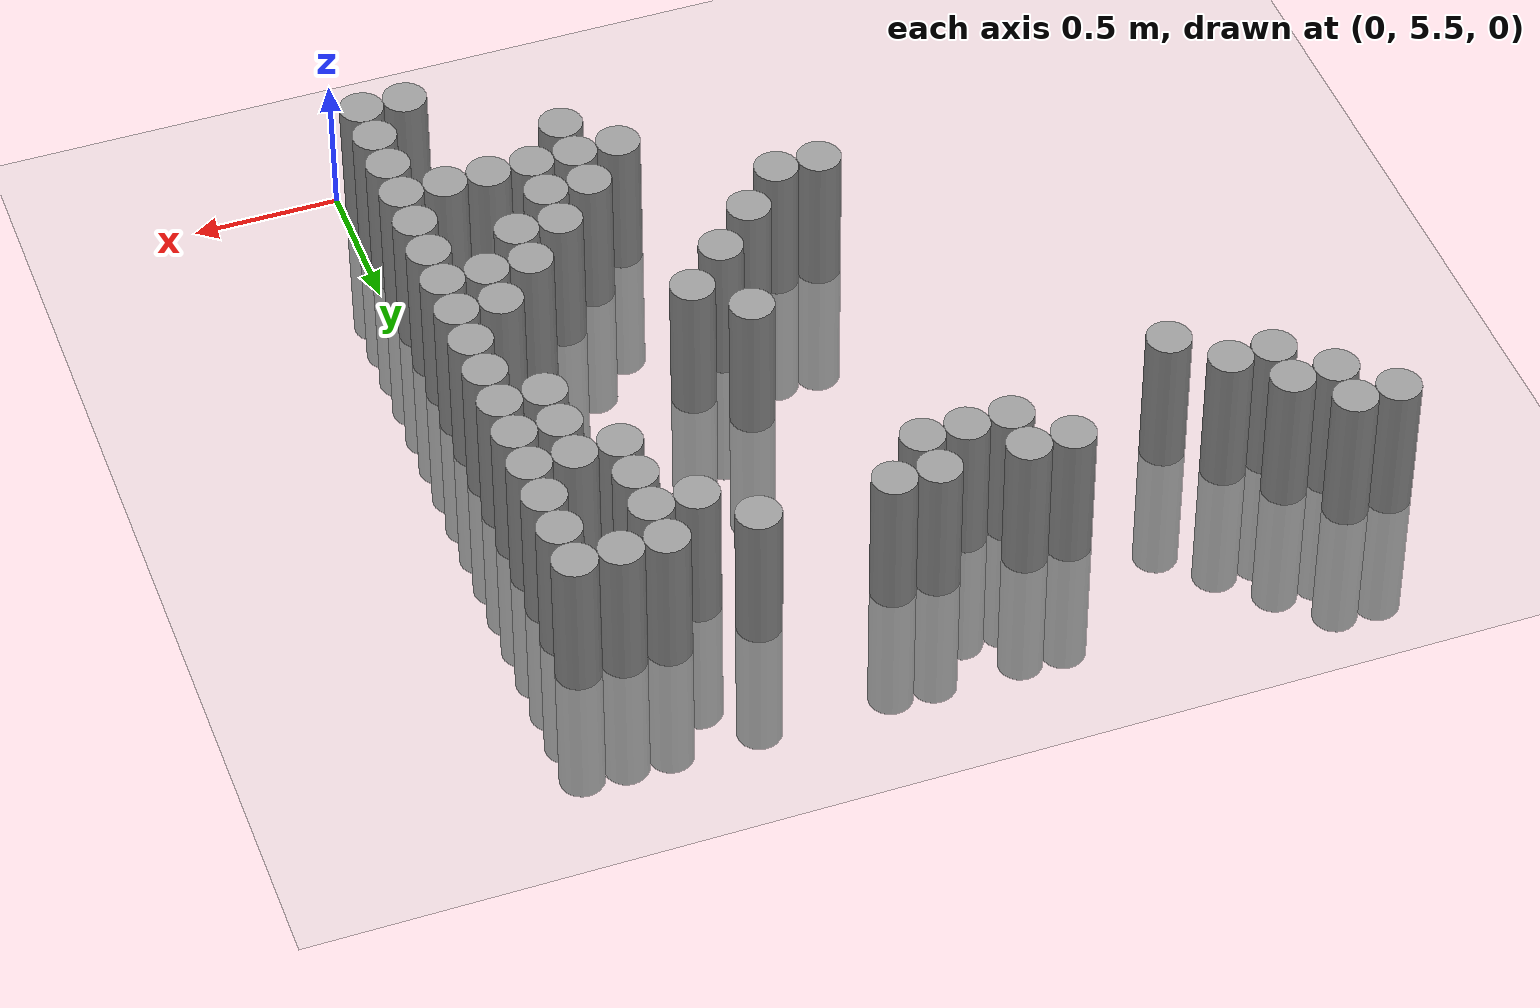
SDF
<sdf version="1.6">
 <world name="default">
  <model name="ground_plane">
   <static>1</static>
   <static>1</static>
   <link name="link">
    <collision name="collision">
     <geometry><plane><normal>0 0 1</normal><size>100 100</size></plane></geometry>
     <surface><friction><ode><mu>100</mu><mu2>50</mu2></ode></friction></surface>
    </collision>
    <visual name="visual">
     <cast_shadows>0</cast_shadows>
     <geometry><plane><normal>0 0 1</normal><size>100 100</size></plane></geometry>
     <material>
      <script><uri>file://media/materials/scripts/gazebo.material</uri><name>Gazebo/Grey</name></script>
     </material>
    </visual>
   </link>
  </model>
  <model name="unit_cylinder_168">
   <static>1</static>
   <pose>-2.775000 8.025000 0.000000 0.000000 0.000000 0.000000</pose>
   <link name="link">
    <inertial>
     <mass>1</mass>
     <inertia><ixx>0.145833</ixx><ixy>0</ixy><ixz>0</ixz><iyy>0.145833</iyy><iyz>0</iyz><izz>0.125</izz></inertia>
    </inertial>
    <collision name="collision">
     <geometry><cylinder><radius>0.075000</radius><length>1</length></cylinder></geometry>
    </collision>
    <visual name="visual">
     <geometry><cylinder><radius>0.075000</radius><length>1</length></cylinder></geometry>
     <material>
      <script><name>Gazebo/Grey</name><uri>file://media/materials/scripts/gazebo.material</uri></script>
     </material>
    </visual>
   </link>
  </model>
  <model name="unit_cylinder_173">
   <static>1</static>
   <pose>-2.625000 7.875000 0.000000 0.000000 0.000000 0.000000</pose>
   <link name="link">
    <inertial>
     <mass>1</mass>
     <inertia><ixx>0.145833</ixx><ixy>0</ixy><ixz>0</ixz><iyy>0.145833</iyy><iyz>0</iyz><izz>0.125</izz></inertia>
    </inertial>
    <collision name="collision">
     <geometry><cylinder><radius>0.075000</radius><length>1</length></cylinder></geometry>
    </collision>
    <visual name="visual">
     <geometry><cylinder><radius>0.075000</radius><length>1</length></cylinder></geometry>
     <material>
      <script><name>Gazebo/Grey</name><uri>file://media/materials/scripts/gazebo.material</uri></script>
     </material>
    </visual>
   </link>
  </model>
  <model name="unit_cylinder_174">
   <static>1</static>
   <pose>-2.625000 8.025000 0.000000 0.000000 0.000000 0.000000</pose>
   <link name="link">
    <inertial>
     <mass>1</mass>
     <inertia><ixx>0.145833</ixx><ixy>0</ixy><ixz>0</ixz><iyy>0.145833</iyy><iyz>0</iyz><izz>0.125</izz></inertia>
    </inertial>
    <collision name="collision">
     <geometry><cylinder><radius>0.075000</radius><length>1</length></cylinder></geometry>
    </collision>
    <visual name="visual">
     <geometry><cylinder><radius>0.075000</radius><length>1</length></cylinder></geometry>
     <material>
      <script><name>Gazebo/Grey</name><uri>file://media/materials/scripts/gazebo.material</uri></script>
     </material>
    </visual>
   </link>
  </model>
  <model name="unit_cylinder_180">
   <static>1</static>
   <pose>-2.475000 7.725000 0.000000 0.000000 0.000000 0.000000</pose>
   <link name="link">
    <inertial>
     <mass>1</mass>
     <inertia><ixx>0.145833</ixx><ixy>0</ixy><ixz>0</ixz><iyy>0.145833</iyy><iyz>0</iyz><izz>0.125</izz></inertia>
    </inertial>
    <collision name="collision">
     <geometry><cylinder><radius>0.075000</radius><length>1</length></cylinder></geometry>
    </collision>
    <visual name="visual">
     <geometry><cylinder><radius>0.075000</radius><length>1</length></cylinder></geometry>
     <material>
      <script><name>Gazebo/Grey</name><uri>file://media/materials/scripts/gazebo.material</uri></script>
     </material>
    </visual>
   </link>
  </model>
  <model name="unit_cylinder_181">
   <static>1</static>
   <pose>-2.475000 7.875000 0.000000 0.000000 0.000000 0.000000</pose>
   <link name="link">
    <inertial>
     <mass>1</mass>
     <inertia><ixx>0.145833</ixx><ixy>0</ixy><ixz>0</ixz><iyy>0.145833</iyy><iyz>0</iyz><izz>0.125</izz></inertia>
    </inertial>
    <collision name="collision">
     <geometry><cylinder><radius>0.075000</radius><length>1</length></cylinder></geometry>
    </collision>
    <visual name="visual">
     <geometry><cylinder><radius>0.075000</radius><length>1</length></cylinder></geometry>
     <material>
      <script><name>Gazebo/Grey</name><uri>file://media/materials/scripts/gazebo.material</uri></script>
     </material>
    </visual>
   </link>
  </model>
  <model name="unit_cylinder_187">
   <static>1</static>
   <pose>-2.325000 7.725000 0.000000 0.000000 0.000000 0.000000</pose>
   <link name="link">
    <inertial>
     <mass>1</mass>
     <inertia><ixx>0.145833</ixx><ixy>0</ixy><ixz>0</ixz><iyy>0.145833</iyy><iyz>0</iyz><izz>0.125</izz></inertia>
    </inertial>
    <collision name="collision">
     <geometry><cylinder><radius>0.075000</radius><length>1</length></cylinder></geometry>
    </collision>
    <visual name="visual">
     <geometry><cylinder><radius>0.075000</radius><length>1</length></cylinder></geometry>
     <material>
      <script><name>Gazebo/Grey</name><uri>file://media/materials/scripts/gazebo.material</uri></script>
     </material>
    </visual>
   </link>
  </model>
  <model name="unit_cylinder_192">
   <static>1</static>
   <pose>-2.175000 7.575000 0.000000 0.000000 0.000000 0.000000</pose>
   <link name="link">
    <inertial>
     <mass>1</mass>
     <inertia><ixx>0.145833</ixx><ixy>0</ixy><ixz>0</ixz><iyy>0.145833</iyy><iyz>0</iyz><izz>0.125</izz></inertia>
    </inertial>
    <collision name="collision">
     <geometry><cylinder><radius>0.075000</radius><length>1</length></cylinder></geometry>
    </collision>
    <visual name="visual">
     <geometry><cylinder><radius>0.075000</radius><length>1</length></cylinder></geometry>
     <material>
      <script><name>Gazebo/Grey</name><uri>file://media/materials/scripts/gazebo.material</uri></script>
     </material>
    </visual>
   </link>
  </model>
  <model name="unit_cylinder_201">
   <static>1</static>
   <pose>-1.725000 7.875000 0.000000 0.000000 0.000000 0.000000</pose>
   <link name="link">
    <inertial>
     <mass>1</mass>
     <inertia><ixx>0.145833</ixx><ixy>0</ixy><ixz>0</ixz><iyy>0.145833</iyy><iyz>0</iyz><izz>0.125</izz></inertia>
    </inertial>
    <collision name="collision">
     <geometry><cylinder><radius>0.075000</radius><length>1</length></cylinder></geometry>
    </collision>
    <visual name="visual">
     <geometry><cylinder><radius>0.075000</radius><length>1</length></cylinder></geometry>
     <material>
      <script><name>Gazebo/Grey</name><uri>file://media/materials/scripts/gazebo.material</uri></script>
     </material>
    </visual>
   </link>
  </model>
  <model name="unit_cylinder_203">
   <static>1</static>
   <pose>-1.575000 7.725000 0.000000 0.000000 0.000000 0.000000</pose>
   <link name="link">
    <inertial>
     <mass>1</mass>
     <inertia><ixx>0.145833</ixx><ixy>0</ixy><ixz>0</ixz><iyy>0.145833</iyy><iyz>0</iyz><izz>0.125</izz></inertia>
    </inertial>
    <collision name="collision">
     <geometry><cylinder><radius>0.075000</radius><length>1</length></cylinder></geometry>
    </collision>
    <visual name="visual">
     <geometry><cylinder><radius>0.075000</radius><length>1</length></cylinder></geometry>
     <material>
      <script><name>Gazebo/Grey</name><uri>file://media/materials/scripts/gazebo.material</uri></script>
     </material>
    </visual>
   </link>
  </model>
  <model name="unit_cylinder_204">
   <static>1</static>
   <pose>-1.575000 7.875000 0.000000 0.000000 0.000000 0.000000</pose>
   <link name="link">
    <inertial>
     <mass>1</mass>
     <inertia><ixx>0.145833</ixx><ixy>0</ixy><ixz>0</ixz><iyy>0.145833</iyy><iyz>0</iyz><izz>0.125</izz></inertia>
    </inertial>
    <collision name="collision">
     <geometry><cylinder><radius>0.075000</radius><length>1</length></cylinder></geometry>
    </collision>
    <visual name="visual">
     <geometry><cylinder><radius>0.075000</radius><length>1</length></cylinder></geometry>
     <material>
      <script><name>Gazebo/Grey</name><uri>file://media/materials/scripts/gazebo.material</uri></script>
     </material>
    </visual>
   </link>
  </model>
  <model name="unit_cylinder_206">
   <static>1</static>
   <pose>-1.425000 6.375000 0.000000 0.000000 0.000000 0.000000</pose>
   <link name="link">
    <inertial>
     <mass>1</mass>
     <inertia><ixx>0.145833</ixx><ixy>0</ixy><ixz>0</ixz><iyy>0.145833</iyy><iyz>0</iyz><izz>0.125</izz></inertia>
    </inertial>
    <collision name="collision">
     <geometry><cylinder><radius>0.075000</radius><length>1</length></cylinder></geometry>
    </collision>
    <visual name="visual">
     <geometry><cylinder><radius>0.075000</radius><length>1</length></cylinder></geometry>
     <material>
      <script><name>Gazebo/Grey</name><uri>file://media/materials/scripts/gazebo.material</uri></script>
     </material>
    </visual>
   </link>
  </model>
  <model name="unit_cylinder_207">
   <static>1</static>
   <pose>-1.425000 7.725000 0.000000 0.000000 0.000000 0.000000</pose>
   <link name="link">
    <inertial>
     <mass>1</mass>
     <inertia><ixx>0.145833</ixx><ixy>0</ixy><ixz>0</ixz><iyy>0.145833</iyy><iyz>0</iyz><izz>0.125</izz></inertia>
    </inertial>
    <collision name="collision">
     <geometry><cylinder><radius>0.075000</radius><length>1</length></cylinder></geometry>
    </collision>
    <visual name="visual">
     <geometry><cylinder><radius>0.075000</radius><length>1</length></cylinder></geometry>
     <material>
      <script><name>Gazebo/Grey</name><uri>file://media/materials/scripts/gazebo.material</uri></script>
     </material>
    </visual>
   </link>
  </model>
  <model name="unit_cylinder_212">
   <static>1</static>
   <pose>-1.275000 6.375000 0.000000 0.000000 0.000000 0.000000</pose>
   <link name="link">
    <inertial>
     <mass>1</mass>
     <inertia><ixx>0.145833</ixx><ixy>0</ixy><ixz>0</ixz><iyy>0.145833</iyy><iyz>0</iyz><izz>0.125</izz></inertia>
    </inertial>
    <collision name="collision">
     <geometry><cylinder><radius>0.075000</radius><length>1</length></cylinder></geometry>
    </collision>
    <visual name="visual">
     <geometry><cylinder><radius>0.075000</radius><length>1</length></cylinder></geometry>
     <material>
      <script><name>Gazebo/Grey</name><uri>file://media/materials/scripts/gazebo.material</uri></script>
     </material>
    </visual>
   </link>
  </model>
  <model name="unit_cylinder_213">
   <static>1</static>
   <pose>-1.275000 7.725000 0.000000 0.000000 0.000000 0.000000</pose>
   <link name="link">
    <inertial>
     <mass>1</mass>
     <inertia><ixx>0.145833</ixx><ixy>0</ixy><ixz>0</ixz><iyy>0.145833</iyy><iyz>0</iyz><izz>0.125</izz></inertia>
    </inertial>
    <collision name="collision">
     <geometry><cylinder><radius>0.075000</radius><length>1</length></cylinder></geometry>
    </collision>
    <visual name="visual">
     <geometry><cylinder><radius>0.075000</radius><length>1</length></cylinder></geometry>
     <material>
      <script><name>Gazebo/Grey</name><uri>file://media/materials/scripts/gazebo.material</uri></script>
     </material>
    </visual>
   </link>
  </model>
  <model name="unit_cylinder_214">
   <static>1</static>
   <pose>-1.275000 7.875000 0.000000 0.000000 0.000000 0.000000</pose>
   <link name="link">
    <inertial>
     <mass>1</mass>
     <inertia><ixx>0.145833</ixx><ixy>0</ixy><ixz>0</ixz><iyy>0.145833</iyy><iyz>0</iyz><izz>0.125</izz></inertia>
    </inertial>
    <collision name="collision">
     <geometry><cylinder><radius>0.075000</radius><length>1</length></cylinder></geometry>
    </collision>
    <visual name="visual">
     <geometry><cylinder><radius>0.075000</radius><length>1</length></cylinder></geometry>
     <material>
      <script><name>Gazebo/Grey</name><uri>file://media/materials/scripts/gazebo.material</uri></script>
     </material>
    </visual>
   </link>
  </model>
  <model name="unit_cylinder_217">
   <static>1</static>
   <pose>-1.125000 6.525000 0.000000 0.000000 0.000000 0.000000</pose>
   <link name="link">
    <inertial>
     <mass>1</mass>
     <inertia><ixx>0.145833</ixx><ixy>0</ixy><ixz>0</ixz><iyy>0.145833</iyy><iyz>0</iyz><izz>0.125</izz></inertia>
    </inertial>
    <collision name="collision">
     <geometry><cylinder><radius>0.075000</radius><length>1</length></cylinder></geometry>
    </collision>
    <visual name="visual">
     <geometry><cylinder><radius>0.075000</radius><length>1</length></cylinder></geometry>
     <material>
      <script><name>Gazebo/Grey</name><uri>file://media/materials/scripts/gazebo.material</uri></script>
     </material>
    </visual>
   </link>
  </model>
  <model name="unit_cylinder_218">
   <static>1</static>
   <pose>-1.125000 7.875000 0.000000 0.000000 0.000000 0.000000</pose>
   <link name="link">
    <inertial>
     <mass>1</mass>
     <inertia><ixx>0.145833</ixx><ixy>0</ixy><ixz>0</ixz><iyy>0.145833</iyy><iyz>0</iyz><izz>0.125</izz></inertia>
    </inertial>
    <collision name="collision">
     <geometry><cylinder><radius>0.075000</radius><length>1</length></cylinder></geometry>
    </collision>
    <visual name="visual">
     <geometry><cylinder><radius>0.075000</radius><length>1</length></cylinder></geometry>
     <material>
      <script><name>Gazebo/Grey</name><uri>file://media/materials/scripts/gazebo.material</uri></script>
     </material>
    </visual>
   </link>
  </model>
  <model name="unit_cylinder_222">
   <static>1</static>
   <pose>-0.975000 6.675000 0.000000 0.000000 0.000000 0.000000</pose>
   <link name="link">
    <inertial>
     <mass>1</mass>
     <inertia><ixx>0.145833</ixx><ixy>0</ixy><ixz>0</ixz><iyy>0.145833</iyy><iyz>0</iyz><izz>0.125</izz></inertia>
    </inertial>
    <collision name="collision">
     <geometry><cylinder><radius>0.075000</radius><length>1</length></cylinder></geometry>
    </collision>
    <visual name="visual">
     <geometry><cylinder><radius>0.075000</radius><length>1</length></cylinder></geometry>
     <material>
      <script><name>Gazebo/Grey</name><uri>file://media/materials/scripts/gazebo.material</uri></script>
     </material>
    </visual>
   </link>
  </model>
  <model name="unit_cylinder_223">
   <static>1</static>
   <pose>-0.975000 6.975000 0.000000 0.000000 0.000000 0.000000</pose>
   <link name="link">
    <inertial>
     <mass>1</mass>
     <inertia><ixx>0.145833</ixx><ixy>0</ixy><ixz>0</ixz><iyy>0.145833</iyy><iyz>0</iyz><izz>0.125</izz></inertia>
    </inertial>
    <collision name="collision">
     <geometry><cylinder><radius>0.075000</radius><length>1</length></cylinder></geometry>
    </collision>
    <visual name="visual">
     <geometry><cylinder><radius>0.075000</radius><length>1</length></cylinder></geometry>
     <material>
      <script><name>Gazebo/Grey</name><uri>file://media/materials/scripts/gazebo.material</uri></script>
     </material>
    </visual>
   </link>
  </model>
  <model name="unit_cylinder_226">
   <static>1</static>
   <pose>-0.825000 6.075000 0.000000 0.000000 0.000000 0.000000</pose>
   <link name="link">
    <inertial>
     <mass>1</mass>
     <inertia><ixx>0.145833</ixx><ixy>0</ixy><ixz>0</ixz><iyy>0.145833</iyy><iyz>0</iyz><izz>0.125</izz></inertia>
    </inertial>
    <collision name="collision">
     <geometry><cylinder><radius>0.075000</radius><length>1</length></cylinder></geometry>
    </collision>
    <visual name="visual">
     <geometry><cylinder><radius>0.075000</radius><length>1</length></cylinder></geometry>
     <material>
      <script><name>Gazebo/Grey</name><uri>file://media/materials/scripts/gazebo.material</uri></script>
     </material>
    </visual>
   </link>
  </model>
  <model name="unit_cylinder_227">
   <static>1</static>
   <pose>-0.825000 6.825000 0.000000 0.000000 0.000000 0.000000</pose>
   <link name="link">
    <inertial>
     <mass>1</mass>
     <inertia><ixx>0.145833</ixx><ixy>0</ixy><ixz>0</ixz><iyy>0.145833</iyy><iyz>0</iyz><izz>0.125</izz></inertia>
    </inertial>
    <collision name="collision">
     <geometry><cylinder><radius>0.075000</radius><length>1</length></cylinder></geometry>
    </collision>
    <visual name="visual">
     <geometry><cylinder><radius>0.075000</radius><length>1</length></cylinder></geometry>
     <material>
      <script><name>Gazebo/Grey</name><uri>file://media/materials/scripts/gazebo.material</uri></script>
     </material>
    </visual>
   </link>
  </model>
  <model name="unit_cylinder_229">
   <static>1</static>
   <pose>-0.675000 5.925000 0.000000 0.000000 0.000000 0.000000</pose>
   <link name="link">
    <inertial>
     <mass>1</mass>
     <inertia><ixx>0.145833</ixx><ixy>0</ixy><ixz>0</ixz><iyy>0.145833</iyy><iyz>0</iyz><izz>0.125</izz></inertia>
    </inertial>
    <collision name="collision">
     <geometry><cylinder><radius>0.075000</radius><length>1</length></cylinder></geometry>
    </collision>
    <visual name="visual">
     <geometry><cylinder><radius>0.075000</radius><length>1</length></cylinder></geometry>
     <material>
      <script><name>Gazebo/Grey</name><uri>file://media/materials/scripts/gazebo.material</uri></script>
     </material>
    </visual>
   </link>
  </model>
  <model name="unit_cylinder_230">
   <static>1</static>
   <pose>-0.675000 6.075000 0.000000 0.000000 0.000000 0.000000</pose>
   <link name="link">
    <inertial>
     <mass>1</mass>
     <inertia><ixx>0.145833</ixx><ixy>0</ixy><ixz>0</ixz><iyy>0.145833</iyy><iyz>0</iyz><izz>0.125</izz></inertia>
    </inertial>
    <collision name="collision">
     <geometry><cylinder><radius>0.075000</radius><length>1</length></cylinder></geometry>
    </collision>
    <visual name="visual">
     <geometry><cylinder><radius>0.075000</radius><length>1</length></cylinder></geometry>
     <material>
      <script><name>Gazebo/Grey</name><uri>file://media/materials/scripts/gazebo.material</uri></script>
     </material>
    </visual>
   </link>
  </model>
  <model name="unit_cylinder_231">
   <static>1</static>
   <pose>-0.675000 6.225000 0.000000 0.000000 0.000000 0.000000</pose>
   <link name="link">
    <inertial>
     <mass>1</mass>
     <inertia><ixx>0.145833</ixx><ixy>0</ixy><ixz>0</ixz><iyy>0.145833</iyy><iyz>0</iyz><izz>0.125</izz></inertia>
    </inertial>
    <collision name="collision">
     <geometry><cylinder><radius>0.075000</radius><length>1</length></cylinder></geometry>
    </collision>
    <visual name="visual">
     <geometry><cylinder><radius>0.075000</radius><length>1</length></cylinder></geometry>
     <material>
      <script><name>Gazebo/Grey</name><uri>file://media/materials/scripts/gazebo.material</uri></script>
     </material>
    </visual>
   </link>
  </model>
  <model name="unit_cylinder_232">
   <static>1</static>
   <pose>-0.675000 7.875000 0.000000 0.000000 0.000000 0.000000</pose>
   <link name="link">
    <inertial>
     <mass>1</mass>
     <inertia><ixx>0.145833</ixx><ixy>0</ixy><ixz>0</ixz><iyy>0.145833</iyy><iyz>0</iyz><izz>0.125</izz></inertia>
    </inertial>
    <collision name="collision">
     <geometry><cylinder><radius>0.075000</radius><length>1</length></cylinder></geometry>
    </collision>
    <visual name="visual">
     <geometry><cylinder><radius>0.075000</radius><length>1</length></cylinder></geometry>
     <material>
      <script><name>Gazebo/Grey</name><uri>file://media/materials/scripts/gazebo.material</uri></script>
     </material>
    </visual>
   </link>
  </model>
  <model name="unit_cylinder_236">
   <static>1</static>
   <pose>-0.525000 6.075000 0.000000 0.000000 0.000000 0.000000</pose>
   <link name="link">
    <inertial>
     <mass>1</mass>
     <inertia><ixx>0.145833</ixx><ixy>0</ixy><ixz>0</ixz><iyy>0.145833</iyy><iyz>0</iyz><izz>0.125</izz></inertia>
    </inertial>
    <collision name="collision">
     <geometry><cylinder><radius>0.075000</radius><length>1</length></cylinder></geometry>
    </collision>
    <visual name="visual">
     <geometry><cylinder><radius>0.075000</radius><length>1</length></cylinder></geometry>
     <material>
      <script><name>Gazebo/Grey</name><uri>file://media/materials/scripts/gazebo.material</uri></script>
     </material>
    </visual>
   </link>
  </model>
  <model name="unit_cylinder_237">
   <static>1</static>
   <pose>-0.525000 6.225000 0.000000 0.000000 0.000000 0.000000</pose>
   <link name="link">
    <inertial>
     <mass>1</mass>
     <inertia><ixx>0.145833</ixx><ixy>0</ixy><ixz>0</ixz><iyy>0.145833</iyy><iyz>0</iyz><izz>0.125</izz></inertia>
    </inertial>
    <collision name="collision">
     <geometry><cylinder><radius>0.075000</radius><length>1</length></cylinder></geometry>
    </collision>
    <visual name="visual">
     <geometry><cylinder><radius>0.075000</radius><length>1</length></cylinder></geometry>
     <material>
      <script><name>Gazebo/Grey</name><uri>file://media/materials/scripts/gazebo.material</uri></script>
     </material>
    </visual>
   </link>
  </model>
  <model name="unit_cylinder_238">
   <static>1</static>
   <pose>-0.525000 6.375000 0.000000 0.000000 0.000000 0.000000</pose>
   <link name="link">
    <inertial>
     <mass>1</mass>
     <inertia><ixx>0.145833</ixx><ixy>0</ixy><ixz>0</ixz><iyy>0.145833</iyy><iyz>0</iyz><izz>0.125</izz></inertia>
    </inertial>
    <collision name="collision">
     <geometry><cylinder><radius>0.075000</radius><length>1</length></cylinder></geometry>
    </collision>
    <visual name="visual">
     <geometry><cylinder><radius>0.075000</radius><length>1</length></cylinder></geometry>
     <material>
      <script><name>Gazebo/Grey</name><uri>file://media/materials/scripts/gazebo.material</uri></script>
     </material>
    </visual>
   </link>
  </model>
  <model name="unit_cylinder_239">
   <static>1</static>
   <pose>-0.525000 7.725000 0.000000 0.000000 0.000000 0.000000</pose>
   <link name="link">
    <inertial>
     <mass>1</mass>
     <inertia><ixx>0.145833</ixx><ixy>0</ixy><ixz>0</ixz><iyy>0.145833</iyy><iyz>0</iyz><izz>0.125</izz></inertia>
    </inertial>
    <collision name="collision">
     <geometry><cylinder><radius>0.075000</radius><length>1</length></cylinder></geometry>
    </collision>
    <visual name="visual">
     <geometry><cylinder><radius>0.075000</radius><length>1</length></cylinder></geometry>
     <material>
      <script><name>Gazebo/Grey</name><uri>file://media/materials/scripts/gazebo.material</uri></script>
     </material>
    </visual>
   </link>
  </model>
  <model name="unit_cylinder_241">
   <static>1</static>
   <pose>-0.375000 6.075000 0.000000 0.000000 0.000000 0.000000</pose>
   <link name="link">
    <inertial>
     <mass>1</mass>
     <inertia><ixx>0.145833</ixx><ixy>0</ixy><ixz>0</ixz><iyy>0.145833</iyy><iyz>0</iyz><izz>0.125</izz></inertia>
    </inertial>
    <collision name="collision">
     <geometry><cylinder><radius>0.075000</radius><length>1</length></cylinder></geometry>
    </collision>
    <visual name="visual">
     <geometry><cylinder><radius>0.075000</radius><length>1</length></cylinder></geometry>
     <material>
      <script><name>Gazebo/Grey</name><uri>file://media/materials/scripts/gazebo.material</uri></script>
     </material>
    </visual>
   </link>
  </model>
  <model name="unit_cylinder_242">
   <static>1</static>
   <pose>-0.375000 6.375000 0.000000 0.000000 0.000000 0.000000</pose>
   <link name="link">
    <inertial>
     <mass>1</mass>
     <inertia><ixx>0.145833</ixx><ixy>0</ixy><ixz>0</ixz><iyy>0.145833</iyy><iyz>0</iyz><izz>0.125</izz></inertia>
    </inertial>
    <collision name="collision">
     <geometry><cylinder><radius>0.075000</radius><length>1</length></cylinder></geometry>
    </collision>
    <visual name="visual">
     <geometry><cylinder><radius>0.075000</radius><length>1</length></cylinder></geometry>
     <material>
      <script><name>Gazebo/Grey</name><uri>file://media/materials/scripts/gazebo.material</uri></script>
     </material>
    </visual>
   </link>
  </model>
  <model name="unit_cylinder_243">
   <static>1</static>
   <pose>-0.375000 6.525000 0.000000 0.000000 0.000000 0.000000</pose>
   <link name="link">
    <inertial>
     <mass>1</mass>
     <inertia><ixx>0.145833</ixx><ixy>0</ixy><ixz>0</ixz><iyy>0.145833</iyy><iyz>0</iyz><izz>0.125</izz></inertia>
    </inertial>
    <collision name="collision">
     <geometry><cylinder><radius>0.075000</radius><length>1</length></cylinder></geometry>
    </collision>
    <visual name="visual">
     <geometry><cylinder><radius>0.075000</radius><length>1</length></cylinder></geometry>
     <material>
      <script><name>Gazebo/Grey</name><uri>file://media/materials/scripts/gazebo.material</uri></script>
     </material>
    </visual>
   </link>
  </model>
  <model name="unit_cylinder_244">
   <static>1</static>
   <pose>-0.375000 7.425000 0.000000 0.000000 0.000000 0.000000</pose>
   <link name="link">
    <inertial>
     <mass>1</mass>
     <inertia><ixx>0.145833</ixx><ixy>0</ixy><ixz>0</ixz><iyy>0.145833</iyy><iyz>0</iyz><izz>0.125</izz></inertia>
    </inertial>
    <collision name="collision">
     <geometry><cylinder><radius>0.075000</radius><length>1</length></cylinder></geometry>
    </collision>
    <visual name="visual">
     <geometry><cylinder><radius>0.075000</radius><length>1</length></cylinder></geometry>
     <material>
      <script><name>Gazebo/Grey</name><uri>file://media/materials/scripts/gazebo.material</uri></script>
     </material>
    </visual>
   </link>
  </model>
  <model name="unit_cylinder_245">
   <static>1</static>
   <pose>-0.375000 7.575000 0.000000 0.000000 0.000000 0.000000</pose>
   <link name="link">
    <inertial>
     <mass>1</mass>
     <inertia><ixx>0.145833</ixx><ixy>0</ixy><ixz>0</ixz><iyy>0.145833</iyy><iyz>0</iyz><izz>0.125</izz></inertia>
    </inertial>
    <collision name="collision">
     <geometry><cylinder><radius>0.075000</radius><length>1</length></cylinder></geometry>
    </collision>
    <visual name="visual">
     <geometry><cylinder><radius>0.075000</radius><length>1</length></cylinder></geometry>
     <material>
      <script><name>Gazebo/Grey</name><uri>file://media/materials/scripts/gazebo.material</uri></script>
     </material>
    </visual>
   </link>
  </model>
  <model name="unit_cylinder_246">
   <static>1</static>
   <pose>-0.375000 7.725000 0.000000 0.000000 0.000000 0.000000</pose>
   <link name="link">
    <inertial>
     <mass>1</mass>
     <inertia><ixx>0.145833</ixx><ixy>0</ixy><ixz>0</ixz><iyy>0.145833</iyy><iyz>0</iyz><izz>0.125</izz></inertia>
    </inertial>
    <collision name="collision">
     <geometry><cylinder><radius>0.075000</radius><length>1</length></cylinder></geometry>
    </collision>
    <visual name="visual">
     <geometry><cylinder><radius>0.075000</radius><length>1</length></cylinder></geometry>
     <material>
      <script><name>Gazebo/Grey</name><uri>file://media/materials/scripts/gazebo.material</uri></script>
     </material>
    </visual>
   </link>
  </model>
  <model name="unit_cylinder_247">
   <static>1</static>
   <pose>-0.375000 7.875000 0.000000 0.000000 0.000000 0.000000</pose>
   <link name="link">
    <inertial>
     <mass>1</mass>
     <inertia><ixx>0.145833</ixx><ixy>0</ixy><ixz>0</ixz><iyy>0.145833</iyy><iyz>0</iyz><izz>0.125</izz></inertia>
    </inertial>
    <collision name="collision">
     <geometry><cylinder><radius>0.075000</radius><length>1</length></cylinder></geometry>
    </collision>
    <visual name="visual">
     <geometry><cylinder><radius>0.075000</radius><length>1</length></cylinder></geometry>
     <material>
      <script><name>Gazebo/Grey</name><uri>file://media/materials/scripts/gazebo.material</uri></script>
     </material>
    </visual>
   </link>
  </model>
  <model name="unit_cylinder_253">
   <static>1</static>
   <pose>-0.225000 5.625000 0.000000 0.000000 0.000000 0.000000</pose>
   <link name="link">
    <inertial>
     <mass>1</mass>
     <inertia><ixx>0.145833</ixx><ixy>0</ixy><ixz>0</ixz><iyy>0.145833</iyy><iyz>0</iyz><izz>0.125</izz></inertia>
    </inertial>
    <collision name="collision">
     <geometry><cylinder><radius>0.075000</radius><length>1</length></cylinder></geometry>
    </collision>
    <visual name="visual">
     <geometry><cylinder><radius>0.075000</radius><length>1</length></cylinder></geometry>
     <material>
      <script><name>Gazebo/Grey</name><uri>file://media/materials/scripts/gazebo.material</uri></script>
     </material>
    </visual>
   </link>
  </model>
  <model name="unit_cylinder_254">
   <static>1</static>
   <pose>-0.225000 6.075000 0.000000 0.000000 0.000000 0.000000</pose>
   <link name="link">
    <inertial>
     <mass>1</mass>
     <inertia><ixx>0.145833</ixx><ixy>0</ixy><ixz>0</ixz><iyy>0.145833</iyy><iyz>0</iyz><izz>0.125</izz></inertia>
    </inertial>
    <collision name="collision">
     <geometry><cylinder><radius>0.075000</radius><length>1</length></cylinder></geometry>
    </collision>
    <visual name="visual">
     <geometry><cylinder><radius>0.075000</radius><length>1</length></cylinder></geometry>
     <material>
      <script><name>Gazebo/Grey</name><uri>file://media/materials/scripts/gazebo.material</uri></script>
     </material>
    </visual>
   </link>
  </model>
  <model name="unit_cylinder_255">
   <static>1</static>
   <pose>-0.225000 6.525000 0.000000 0.000000 0.000000 0.000000</pose>
   <link name="link">
    <inertial>
     <mass>1</mass>
     <inertia><ixx>0.145833</ixx><ixy>0</ixy><ixz>0</ixz><iyy>0.145833</iyy><iyz>0</iyz><izz>0.125</izz></inertia>
    </inertial>
    <collision name="collision">
     <geometry><cylinder><radius>0.075000</radius><length>1</length></cylinder></geometry>
    </collision>
    <visual name="visual">
     <geometry><cylinder><radius>0.075000</radius><length>1</length></cylinder></geometry>
     <material>
      <script><name>Gazebo/Grey</name><uri>file://media/materials/scripts/gazebo.material</uri></script>
     </material>
    </visual>
   </link>
  </model>
  <model name="unit_cylinder_256">
   <static>1</static>
   <pose>-0.225000 6.675000 0.000000 0.000000 0.000000 0.000000</pose>
   <link name="link">
    <inertial>
     <mass>1</mass>
     <inertia><ixx>0.145833</ixx><ixy>0</ixy><ixz>0</ixz><iyy>0.145833</iyy><iyz>0</iyz><izz>0.125</izz></inertia>
    </inertial>
    <collision name="collision">
     <geometry><cylinder><radius>0.075000</radius><length>1</length></cylinder></geometry>
    </collision>
    <visual name="visual">
     <geometry><cylinder><radius>0.075000</radius><length>1</length></cylinder></geometry>
     <material>
      <script><name>Gazebo/Grey</name><uri>file://media/materials/scripts/gazebo.material</uri></script>
     </material>
    </visual>
   </link>
  </model>
  <model name="unit_cylinder_257">
   <static>1</static>
   <pose>-0.225000 7.125000 0.000000 0.000000 0.000000 0.000000</pose>
   <link name="link">
    <inertial>
     <mass>1</mass>
     <inertia><ixx>0.145833</ixx><ixy>0</ixy><ixz>0</ixz><iyy>0.145833</iyy><iyz>0</iyz><izz>0.125</izz></inertia>
    </inertial>
    <collision name="collision">
     <geometry><cylinder><radius>0.075000</radius><length>1</length></cylinder></geometry>
    </collision>
    <visual name="visual">
     <geometry><cylinder><radius>0.075000</radius><length>1</length></cylinder></geometry>
     <material>
      <script><name>Gazebo/Grey</name><uri>file://media/materials/scripts/gazebo.material</uri></script>
     </material>
    </visual>
   </link>
  </model>
  <model name="unit_cylinder_258">
   <static>1</static>
   <pose>-0.225000 7.275000 0.000000 0.000000 0.000000 0.000000</pose>
   <link name="link">
    <inertial>
     <mass>1</mass>
     <inertia><ixx>0.145833</ixx><ixy>0</ixy><ixz>0</ixz><iyy>0.145833</iyy><iyz>0</iyz><izz>0.125</izz></inertia>
    </inertial>
    <collision name="collision">
     <geometry><cylinder><radius>0.075000</radius><length>1</length></cylinder></geometry>
    </collision>
    <visual name="visual">
     <geometry><cylinder><radius>0.075000</radius><length>1</length></cylinder></geometry>
     <material>
      <script><name>Gazebo/Grey</name><uri>file://media/materials/scripts/gazebo.material</uri></script>
     </material>
    </visual>
   </link>
  </model>
  <model name="unit_cylinder_259">
   <static>1</static>
   <pose>-0.225000 7.425000 0.000000 0.000000 0.000000 0.000000</pose>
   <link name="link">
    <inertial>
     <mass>1</mass>
     <inertia><ixx>0.145833</ixx><ixy>0</ixy><ixz>0</ixz><iyy>0.145833</iyy><iyz>0</iyz><izz>0.125</izz></inertia>
    </inertial>
    <collision name="collision">
     <geometry><cylinder><radius>0.075000</radius><length>1</length></cylinder></geometry>
    </collision>
    <visual name="visual">
     <geometry><cylinder><radius>0.075000</radius><length>1</length></cylinder></geometry>
     <material>
      <script><name>Gazebo/Grey</name><uri>file://media/materials/scripts/gazebo.material</uri></script>
     </material>
    </visual>
   </link>
  </model>
  <model name="unit_cylinder_260">
   <static>1</static>
   <pose>-0.225000 7.875000 0.000000 0.000000 0.000000 0.000000</pose>
   <link name="link">
    <inertial>
     <mass>1</mass>
     <inertia><ixx>0.145833</ixx><ixy>0</ixy><ixz>0</ixz><iyy>0.145833</iyy><iyz>0</iyz><izz>0.125</izz></inertia>
    </inertial>
    <collision name="collision">
     <geometry><cylinder><radius>0.075000</radius><length>1</length></cylinder></geometry>
    </collision>
    <visual name="visual">
     <geometry><cylinder><radius>0.075000</radius><length>1</length></cylinder></geometry>
     <material>
      <script><name>Gazebo/Grey</name><uri>file://media/materials/scripts/gazebo.material</uri></script>
     </material>
    </visual>
   </link>
  </model>
  <model name="unit_cylinder_273">
   <static>1</static>
   <pose>-0.075000 5.625000 0.000000 0.000000 0.000000 0.000000</pose>
   <link name="link">
    <inertial>
     <mass>1</mass>
     <inertia><ixx>0.145833</ixx><ixy>0</ixy><ixz>0</ixz><iyy>0.145833</iyy><iyz>0</iyz><izz>0.125</izz></inertia>
    </inertial>
    <collision name="collision">
     <geometry><cylinder><radius>0.075000</radius><length>1</length></cylinder></geometry>
    </collision>
    <visual name="visual">
     <geometry><cylinder><radius>0.075000</radius><length>1</length></cylinder></geometry>
     <material>
      <script><name>Gazebo/Grey</name><uri>file://media/materials/scripts/gazebo.material</uri></script>
     </material>
    </visual>
   </link>
  </model>
  <model name="unit_cylinder_274">
   <static>1</static>
   <pose>-0.075000 5.775000 0.000000 0.000000 0.000000 0.000000</pose>
   <link name="link">
    <inertial>
     <mass>1</mass>
     <inertia><ixx>0.145833</ixx><ixy>0</ixy><ixz>0</ixz><iyy>0.145833</iyy><iyz>0</iyz><izz>0.125</izz></inertia>
    </inertial>
    <collision name="collision">
     <geometry><cylinder><radius>0.075000</radius><length>1</length></cylinder></geometry>
    </collision>
    <visual name="visual">
     <geometry><cylinder><radius>0.075000</radius><length>1</length></cylinder></geometry>
     <material>
      <script><name>Gazebo/Grey</name><uri>file://media/materials/scripts/gazebo.material</uri></script>
     </material>
    </visual>
   </link>
  </model>
  <model name="unit_cylinder_275">
   <static>1</static>
   <pose>-0.075000 5.925000 0.000000 0.000000 0.000000 0.000000</pose>
   <link name="link">
    <inertial>
     <mass>1</mass>
     <inertia><ixx>0.145833</ixx><ixy>0</ixy><ixz>0</ixz><iyy>0.145833</iyy><iyz>0</iyz><izz>0.125</izz></inertia>
    </inertial>
    <collision name="collision">
     <geometry><cylinder><radius>0.075000</radius><length>1</length></cylinder></geometry>
    </collision>
    <visual name="visual">
     <geometry><cylinder><radius>0.075000</radius><length>1</length></cylinder></geometry>
     <material>
      <script><name>Gazebo/Grey</name><uri>file://media/materials/scripts/gazebo.material</uri></script>
     </material>
    </visual>
   </link>
  </model>
  <model name="unit_cylinder_276">
   <static>1</static>
   <pose>-0.075000 6.075000 0.000000 0.000000 0.000000 0.000000</pose>
   <link name="link">
    <inertial>
     <mass>1</mass>
     <inertia><ixx>0.145833</ixx><ixy>0</ixy><ixz>0</ixz><iyy>0.145833</iyy><iyz>0</iyz><izz>0.125</izz></inertia>
    </inertial>
    <collision name="collision">
     <geometry><cylinder><radius>0.075000</radius><length>1</length></cylinder></geometry>
    </collision>
    <visual name="visual">
     <geometry><cylinder><radius>0.075000</radius><length>1</length></cylinder></geometry>
     <material>
      <script><name>Gazebo/Grey</name><uri>file://media/materials/scripts/gazebo.material</uri></script>
     </material>
    </visual>
   </link>
  </model>
  <model name="unit_cylinder_277">
   <static>1</static>
   <pose>-0.075000 6.225000 0.000000 0.000000 0.000000 0.000000</pose>
   <link name="link">
    <inertial>
     <mass>1</mass>
     <inertia><ixx>0.145833</ixx><ixy>0</ixy><ixz>0</ixz><iyy>0.145833</iyy><iyz>0</iyz><izz>0.125</izz></inertia>
    </inertial>
    <collision name="collision">
     <geometry><cylinder><radius>0.075000</radius><length>1</length></cylinder></geometry>
    </collision>
    <visual name="visual">
     <geometry><cylinder><radius>0.075000</radius><length>1</length></cylinder></geometry>
     <material>
      <script><name>Gazebo/Grey</name><uri>file://media/materials/scripts/gazebo.material</uri></script>
     </material>
    </visual>
   </link>
  </model>
  <model name="unit_cylinder_278">
   <static>1</static>
   <pose>-0.075000 6.375000 0.000000 0.000000 0.000000 0.000000</pose>
   <link name="link">
    <inertial>
     <mass>1</mass>
     <inertia><ixx>0.145833</ixx><ixy>0</ixy><ixz>0</ixz><iyy>0.145833</iyy><iyz>0</iyz><izz>0.125</izz></inertia>
    </inertial>
    <collision name="collision">
     <geometry><cylinder><radius>0.075000</radius><length>1</length></cylinder></geometry>
    </collision>
    <visual name="visual">
     <geometry><cylinder><radius>0.075000</radius><length>1</length></cylinder></geometry>
     <material>
      <script><name>Gazebo/Grey</name><uri>file://media/materials/scripts/gazebo.material</uri></script>
     </material>
    </visual>
   </link>
  </model>
  <model name="unit_cylinder_279">
   <static>1</static>
   <pose>-0.075000 6.525000 0.000000 0.000000 0.000000 0.000000</pose>
   <link name="link">
    <inertial>
     <mass>1</mass>
     <inertia><ixx>0.145833</ixx><ixy>0</ixy><ixz>0</ixz><iyy>0.145833</iyy><iyz>0</iyz><izz>0.125</izz></inertia>
    </inertial>
    <collision name="collision">
     <geometry><cylinder><radius>0.075000</radius><length>1</length></cylinder></geometry>
    </collision>
    <visual name="visual">
     <geometry><cylinder><radius>0.075000</radius><length>1</length></cylinder></geometry>
     <material>
      <script><name>Gazebo/Grey</name><uri>file://media/materials/scripts/gazebo.material</uri></script>
     </material>
    </visual>
   </link>
  </model>
  <model name="unit_cylinder_280">
   <static>1</static>
   <pose>-0.075000 6.675000 0.000000 0.000000 0.000000 0.000000</pose>
   <link name="link">
    <inertial>
     <mass>1</mass>
     <inertia><ixx>0.145833</ixx><ixy>0</ixy><ixz>0</ixz><iyy>0.145833</iyy><iyz>0</iyz><izz>0.125</izz></inertia>
    </inertial>
    <collision name="collision">
     <geometry><cylinder><radius>0.075000</radius><length>1</length></cylinder></geometry>
    </collision>
    <visual name="visual">
     <geometry><cylinder><radius>0.075000</radius><length>1</length></cylinder></geometry>
     <material>
      <script><name>Gazebo/Grey</name><uri>file://media/materials/scripts/gazebo.material</uri></script>
     </material>
    </visual>
   </link>
  </model>
  <model name="unit_cylinder_281">
   <static>1</static>
   <pose>-0.075000 6.825000 0.000000 0.000000 0.000000 0.000000</pose>
   <link name="link">
    <inertial>
     <mass>1</mass>
     <inertia><ixx>0.145833</ixx><ixy>0</ixy><ixz>0</ixz><iyy>0.145833</iyy><iyz>0</iyz><izz>0.125</izz></inertia>
    </inertial>
    <collision name="collision">
     <geometry><cylinder><radius>0.075000</radius><length>1</length></cylinder></geometry>
    </collision>
    <visual name="visual">
     <geometry><cylinder><radius>0.075000</radius><length>1</length></cylinder></geometry>
     <material>
      <script><name>Gazebo/Grey</name><uri>file://media/materials/scripts/gazebo.material</uri></script>
     </material>
    </visual>
   </link>
  </model>
  <model name="unit_cylinder_282">
   <static>1</static>
   <pose>-0.075000 6.975000 0.000000 0.000000 0.000000 0.000000</pose>
   <link name="link">
    <inertial>
     <mass>1</mass>
     <inertia><ixx>0.145833</ixx><ixy>0</ixy><ixz>0</ixz><iyy>0.145833</iyy><iyz>0</iyz><izz>0.125</izz></inertia>
    </inertial>
    <collision name="collision">
     <geometry><cylinder><radius>0.075000</radius><length>1</length></cylinder></geometry>
    </collision>
    <visual name="visual">
     <geometry><cylinder><radius>0.075000</radius><length>1</length></cylinder></geometry>
     <material>
      <script><name>Gazebo/Grey</name><uri>file://media/materials/scripts/gazebo.material</uri></script>
     </material>
    </visual>
   </link>
  </model>
  <model name="unit_cylinder_283">
   <static>1</static>
   <pose>-0.075000 7.125000 0.000000 0.000000 0.000000 0.000000</pose>
   <link name="link">
    <inertial>
     <mass>1</mass>
     <inertia><ixx>0.145833</ixx><ixy>0</ixy><ixz>0</ixz><iyy>0.145833</iyy><iyz>0</iyz><izz>0.125</izz></inertia>
    </inertial>
    <collision name="collision">
     <geometry><cylinder><radius>0.075000</radius><length>1</length></cylinder></geometry>
    </collision>
    <visual name="visual">
     <geometry><cylinder><radius>0.075000</radius><length>1</length></cylinder></geometry>
     <material>
      <script><name>Gazebo/Grey</name><uri>file://media/materials/scripts/gazebo.material</uri></script>
     </material>
    </visual>
   </link>
  </model>
  <model name="unit_cylinder_284">
   <static>1</static>
   <pose>-0.075000 7.275000 0.000000 0.000000 0.000000 0.000000</pose>
   <link name="link">
    <inertial>
     <mass>1</mass>
     <inertia><ixx>0.145833</ixx><ixy>0</ixy><ixz>0</ixz><iyy>0.145833</iyy><iyz>0</iyz><izz>0.125</izz></inertia>
    </inertial>
    <collision name="collision">
     <geometry><cylinder><radius>0.075000</radius><length>1</length></cylinder></geometry>
    </collision>
    <visual name="visual">
     <geometry><cylinder><radius>0.075000</radius><length>1</length></cylinder></geometry>
     <material>
      <script><name>Gazebo/Grey</name><uri>file://media/materials/scripts/gazebo.material</uri></script>
     </material>
    </visual>
   </link>
  </model>
  <model name="unit_cylinder_285">
   <static>1</static>
   <pose>-0.075000 7.425000 0.000000 0.000000 0.000000 0.000000</pose>
   <link name="link">
    <inertial>
     <mass>1</mass>
     <inertia><ixx>0.145833</ixx><ixy>0</ixy><ixz>0</ixz><iyy>0.145833</iyy><iyz>0</iyz><izz>0.125</izz></inertia>
    </inertial>
    <collision name="collision">
     <geometry><cylinder><radius>0.075000</radius><length>1</length></cylinder></geometry>
    </collision>
    <visual name="visual">
     <geometry><cylinder><radius>0.075000</radius><length>1</length></cylinder></geometry>
     <material>
      <script><name>Gazebo/Grey</name><uri>file://media/materials/scripts/gazebo.material</uri></script>
     </material>
    </visual>
   </link>
  </model>
  <model name="unit_cylinder_286">
   <static>1</static>
   <pose>-0.075000 7.575000 0.000000 0.000000 0.000000 0.000000</pose>
   <link name="link">
    <inertial>
     <mass>1</mass>
     <inertia><ixx>0.145833</ixx><ixy>0</ixy><ixz>0</ixz><iyy>0.145833</iyy><iyz>0</iyz><izz>0.125</izz></inertia>
    </inertial>
    <collision name="collision">
     <geometry><cylinder><radius>0.075000</radius><length>1</length></cylinder></geometry>
    </collision>
    <visual name="visual">
     <geometry><cylinder><radius>0.075000</radius><length>1</length></cylinder></geometry>
     <material>
      <script><name>Gazebo/Grey</name><uri>file://media/materials/scripts/gazebo.material</uri></script>
     </material>
    </visual>
   </link>
  </model>
  <model name="unit_cylinder_287">
   <static>1</static>
   <pose>-0.075000 7.725000 0.000000 0.000000 0.000000 0.000000</pose>
   <link name="link">
    <inertial>
     <mass>1</mass>
     <inertia><ixx>0.145833</ixx><ixy>0</ixy><ixz>0</ixz><iyy>0.145833</iyy><iyz>0</iyz><izz>0.125</izz></inertia>
    </inertial>
    <collision name="collision">
     <geometry><cylinder><radius>0.075000</radius><length>1</length></cylinder></geometry>
    </collision>
    <visual name="visual">
     <geometry><cylinder><radius>0.075000</radius><length>1</length></cylinder></geometry>
     <material>
      <script><name>Gazebo/Grey</name><uri>file://media/materials/scripts/gazebo.material</uri></script>
     </material>
    </visual>
   </link>
  </model>
  <model name="unit_cylinder_288">
   <static>1</static>
   <pose>-0.075000 7.875000 0.000000 0.000000 0.000000 0.000000</pose>
   <link name="link">
    <inertial>
     <mass>1</mass>
     <inertia><ixx>0.145833</ixx><ixy>0</ixy><ixz>0</ixz><iyy>0.145833</iyy><iyz>0</iyz><izz>0.125</izz></inertia>
    </inertial>
    <collision name="collision">
     <geometry><cylinder><radius>0.075000</radius><length>1</length></cylinder></geometry>
    </collision>
    <visual name="visual">
     <geometry><cylinder><radius>0.075000</radius><length>1</length></cylinder></geometry>
     <material>
      <script><name>Gazebo/Grey</name><uri>file://media/materials/scripts/gazebo.material</uri></script>
     </material>
    </visual>
   </link>
  </model>
 </world>
</sdf>
